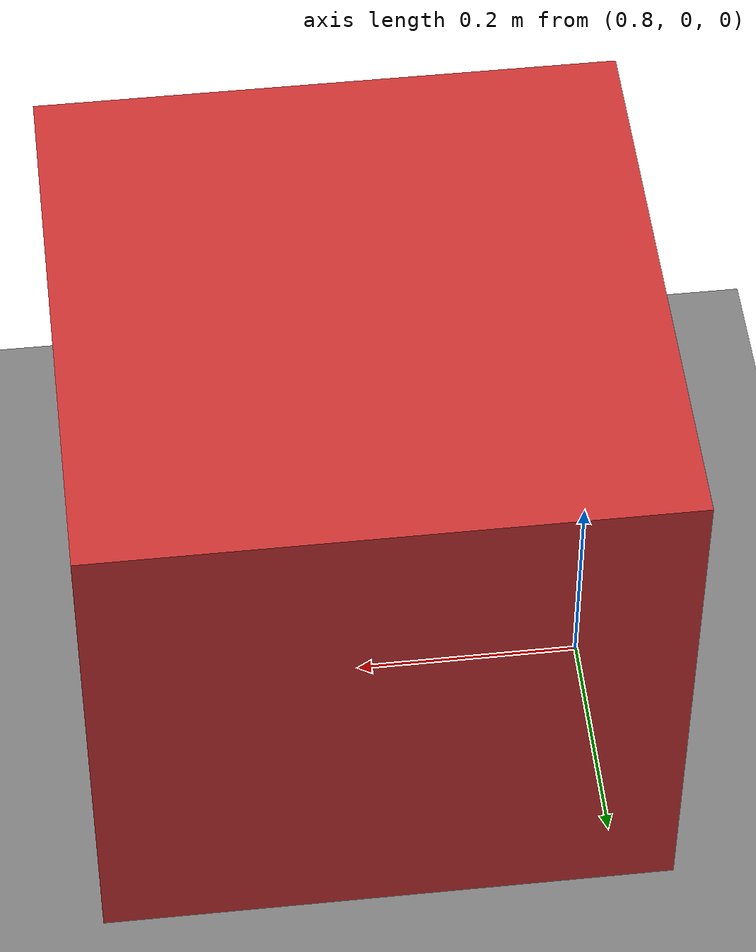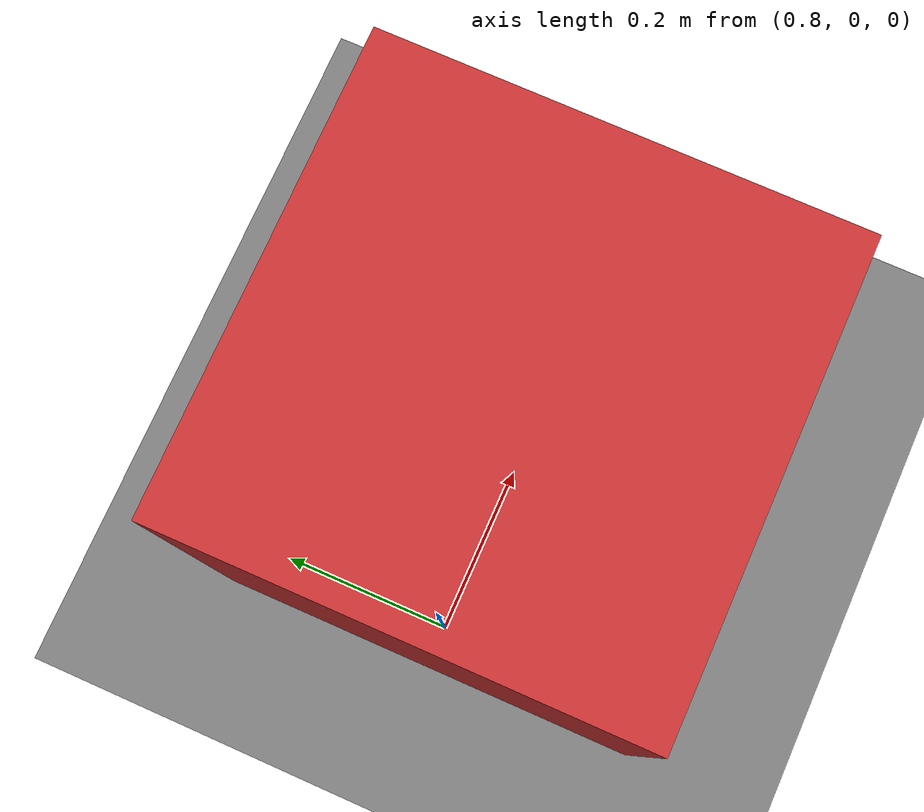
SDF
<?xml version="1.0"?>
<sdf version="1.7">
  <world name="demo_world">
    <gravity>0 0 -9.81</gravity>
    <physics name="default_physics" type="ode"/>

    <light name="sun" type="directional">
      <cast_shadows>true</cast_shadows>
      <pose>0 0 10 0 0 0</pose>
      <diffuse>1 1 1 1</diffuse>
      <specular>0.1 0.1 0.1 1</specular>
      <attenuation>
        <range>100</range>
        <constant>0.9</constant>
        <linear>0.01</linear>
        <quadratic>0.001</quadratic>
      </attenuation>
      <direction>-0.5 0.5 -1</direction>
    </light>

    <model name="ground">
      <static>true</static>
      <pose>0 0 0 0 0 0</pose>
      <link name="link">
        <collision name="collision">
          <geometry>
            <plane>
              <normal>0 0 1</normal>
              <size>10 10</size>
            </plane>
          </geometry>
        </collision>
        <visual name="visual">
          <geometry>
            <plane>
              <normal>0 0 1</normal>
              <size>10 10</size>
            </plane>
          </geometry>
          <material>
            <ambient>0.3 0.3 0.3 1</ambient>
            <diffuse>0.5 0.5 0.5 1</diffuse>
          </material>
        </visual>
      </link>
    </model>

    <model name="obstacle_box">
      <static>true</static>
      <pose>1 0 0.25 0 0 0</pose>
      <link name="link">
        <collision name="collision">
          <geometry>
            <box><size>0.5 0.5 0.5</size></box>
          </geometry>
        </collision>
        <visual name="visual">
          <geometry>
            <box><size>0.5 0.5 0.5</size></box>
          </geometry>
          <material>
            <ambient>0.8 0.2 0.2 1</ambient>
            <diffuse>0.8 0.2 0.2 1</diffuse>
          </material>
        </visual>
      </link>
    </model>

  </world>
</sdf>
